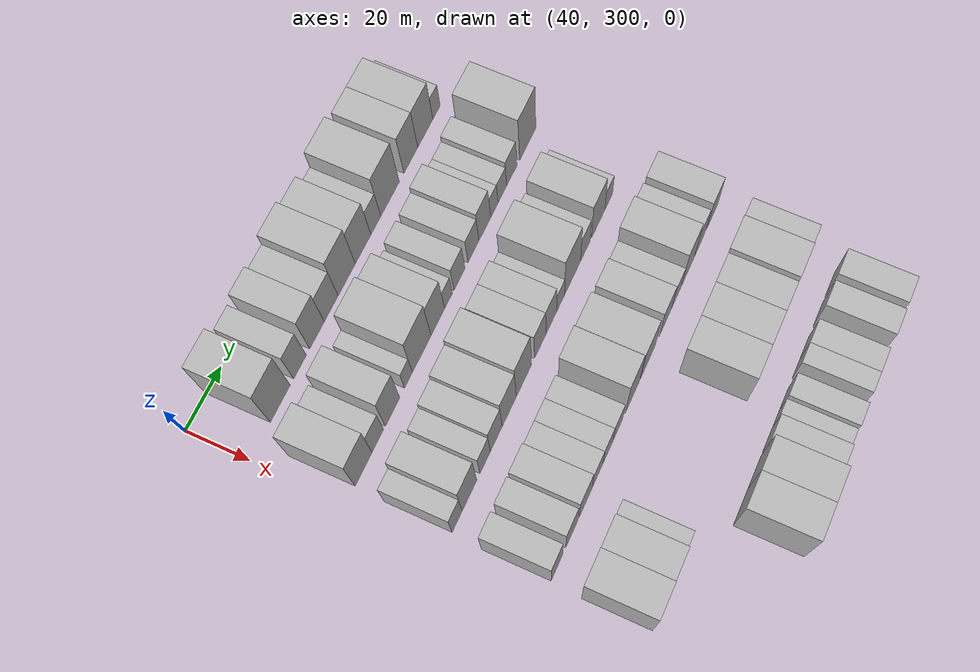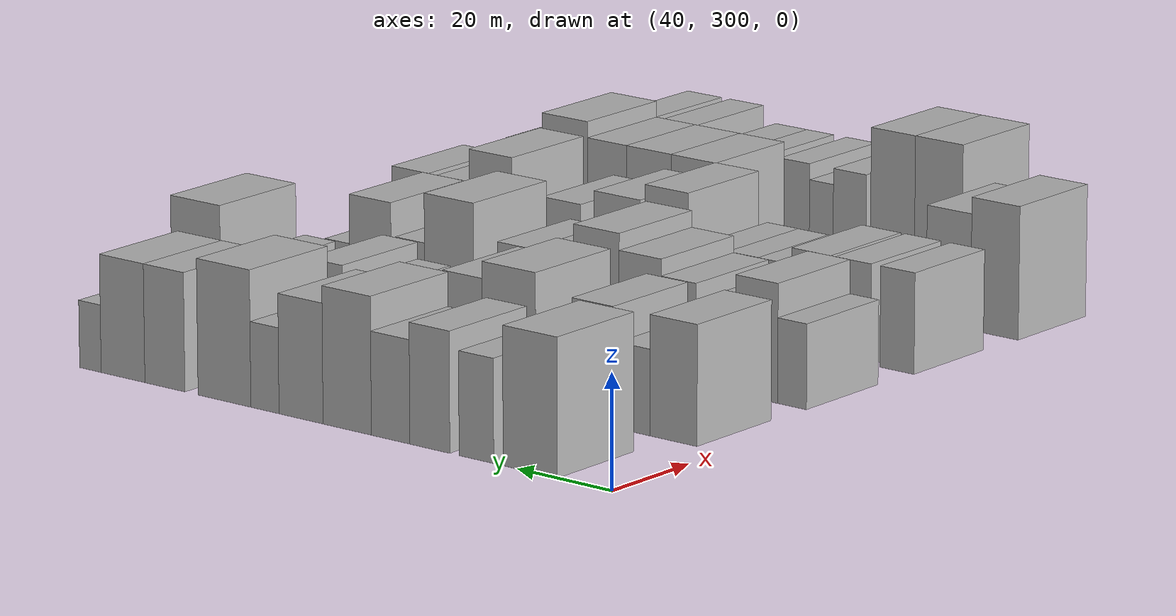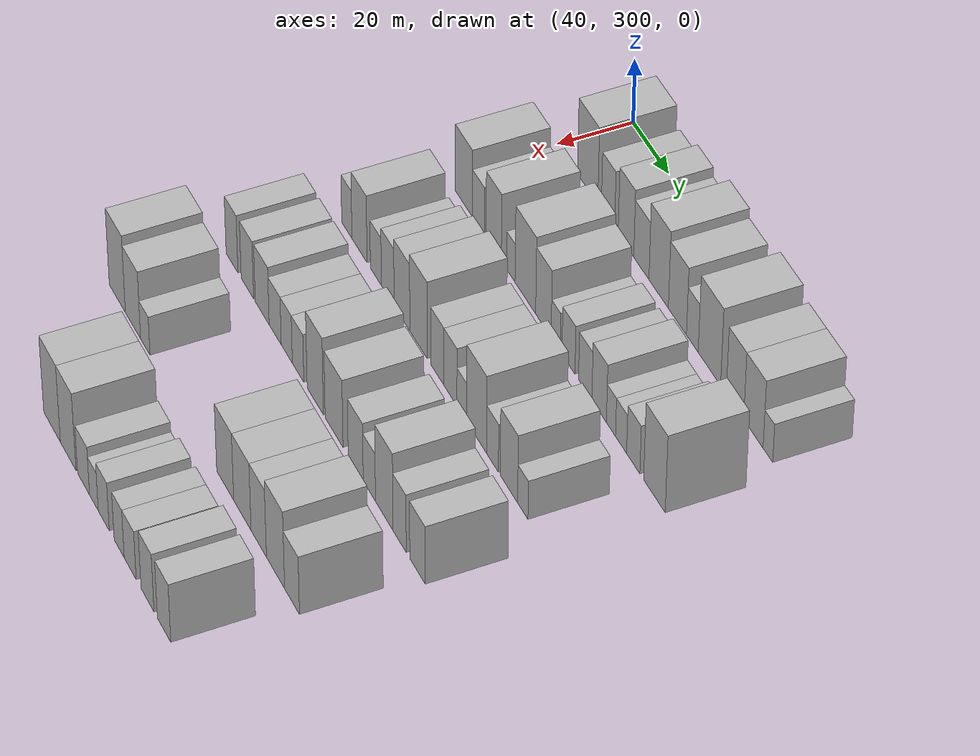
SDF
<sdf version="1.6">
 <world name="default">
  <model name="building_95">
   <static>1</static>
   <pose>50.0000 317.3767 0 0.000000 0.000000 0.000000</pose>
   <link name="link">
    <pose>0 0 12.00 0 0 0</pose>
    <collision name="collision"><geometry><box><size>20.0000 11.5306 24.0000</size></box></geometry></collision>
    <visual name="visual">
     <cast_shadows>0</cast_shadows>
     <geometry><box><size>20.0000 11.5306 24.0000</size></box></geometry>
     <material>
      <script>
       <uri>model://HANNAS_wall/materials/scripts</uri>
       <uri>model://HANNAS_wall/materials/textures</uri>
       <name>vrc/HANNAS_wall</name>
      </script>
     </material>
    </visual>
   </link>
  </model>
  <model name="building_96">
   <static>1</static>
   <pose>50.0000 328.8717 0 0.000000 0.000000 0.000000</pose>
   <link name="link">
    <pose>0 0 9.00 0 0 0</pose>
    <collision name="collision"><geometry><box><size>20.0000 7.4594 18.0000</size></box></geometry></collision>
    <visual name="visual">
     <cast_shadows>0</cast_shadows>
     <geometry><box><size>20.0000 7.4594 18.0000</size></box></geometry>
     <material>
      <script>
       <uri>model://HANNAS_wall/materials/scripts</uri>
       <uri>model://HANNAS_wall/materials/textures</uri>
       <name>vrc/HANNAS_wall</name>
      </script>
     </material>
    </visual>
   </link>
  </model>
  <model name="building_97">
   <static>1</static>
   <pose>50.0000 338.9504 0 0.000000 0.000000 0.000000</pose>
   <link name="link">
    <pose>0 0 10.50 0 0 0</pose>
    <collision name="collision"><geometry><box><size>20.0000 8.6980 21.0000</size></box></geometry></collision>
    <visual name="visual">
     <cast_shadows>0</cast_shadows>
     <geometry><box><size>20.0000 8.6980 21.0000</size></box></geometry>
     <material>
      <script>
       <uri>model://HANNAS_wall/materials/scripts</uri>
       <uri>model://HANNAS_wall/materials/textures</uri>
       <name>vrc/HANNAS_wall</name>
      </script>
     </material>
    </visual>
   </link>
  </model>
  <model name="building_98">
   <static>1</static>
   <pose>50.0000 347.5077 0 0.000000 0.000000 0.000000</pose>
   <link name="link">
    <pose>0 0 9.00 0 0 0</pose>
    <collision name="collision"><geometry><box><size>20.0000 8.4166 18.0000</size></box></geometry></collision>
    <visual name="visual">
     <cast_shadows>0</cast_shadows>
     <geometry><box><size>20.0000 8.4166 18.0000</size></box></geometry>
     <material>
      <script>
       <uri>model://HANNAS_wall/materials/scripts</uri>
       <uri>model://HANNAS_wall/materials/textures</uri>
       <name>vrc/HANNAS_wall</name>
      </script>
     </material>
    </visual>
   </link>
  </model>
  <model name="building_99">
   <static>1</static>
   <pose>50.0000 357.0452 0 0.000000 0.000000 0.000000</pose>
   <link name="link">
    <pose>0 0 12.00 0 0 0</pose>
    <collision name="collision"><geometry><box><size>20.0000 10.6584 24.0000</size></box></geometry></collision>
    <visual name="visual">
     <cast_shadows>0</cast_shadows>
     <geometry><box><size>20.0000 10.6584 24.0000</size></box></geometry>
     <material>
      <script>
       <uri>model://HANNAS_wall/materials/scripts</uri>
       <uri>model://HANNAS_wall/materials/textures</uri>
       <name>vrc/HANNAS_wall</name>
      </script>
     </material>
    </visual>
   </link>
  </model>
  <model name="building_100">
   <static>1</static>
   <pose>50.0000 367.2842 0 0.000000 0.000000 0.000000</pose>
   <link name="link">
    <pose>0 0 10.50 0 0 0</pose>
    <collision name="collision"><geometry><box><size>20.0000 9.8195 21.0000</size></box></geometry></collision>
    <visual name="visual">
     <cast_shadows>0</cast_shadows>
     <geometry><box><size>20.0000 9.8195 21.0000</size></box></geometry>
     <material>
      <script>
       <uri>model://HANNAS_wall/materials/scripts</uri>
       <uri>model://HANNAS_wall/materials/textures</uri>
       <name>vrc/HANNAS_wall</name>
      </script>
     </material>
    </visual>
   </link>
  </model>
  <model name="building_101">
   <static>1</static>
   <pose>50.0000 375.3558 0 0.000000 0.000000 0.000000</pose>
   <link name="link">
    <pose>0 0 7.50 0 0 0</pose>
    <collision name="collision"><geometry><box><size>20.0000 6.3237 15.0000</size></box></geometry></collision>
    <visual name="visual">
     <cast_shadows>0</cast_shadows>
     <geometry><box><size>20.0000 6.3237 15.0000</size></box></geometry>
     <material>
      <script>
       <uri>model://HANNAS_wall/materials/scripts</uri>
       <uri>model://HANNAS_wall/materials/textures</uri>
       <name>vrc/HANNAS_wall</name>
      </script>
     </material>
    </visual>
   </link>
  </model>
  <model name="building_102">
   <static>1</static>
   <pose>50.0000 384.4923 0 0.000000 0.000000 0.000000</pose>
   <link name="link">
    <pose>0 0 12.00 0 0 0</pose>
    <collision name="collision"><geometry><box><size>20.0000 11.9492 24.0000</size></box></geometry></collision>
    <visual name="visual">
     <cast_shadows>0</cast_shadows>
     <geometry><box><size>20.0000 11.9492 24.0000</size></box></geometry>
     <material>
      <script>
       <uri>model://HANNAS_wall/materials/scripts</uri>
       <uri>model://HANNAS_wall/materials/textures</uri>
       <name>vrc/HANNAS_wall</name>
      </script>
     </material>
    </visual>
   </link>
  </model>
  <model name="building_103">
   <static>1</static>
   <pose>50.0000 398.0509 0 0.000000 0.000000 0.000000</pose>
   <link name="link">
    <pose>0 0 10.50 0 0 0</pose>
    <collision name="collision"><geometry><box><size>20.0000 9.1679 21.0000</size></box></geometry></collision>
    <visual name="visual">
     <cast_shadows>0</cast_shadows>
     <geometry><box><size>20.0000 9.1679 21.0000</size></box></geometry>
     <material>
      <script>
       <uri>model://HANNAS_wall/materials/scripts</uri>
       <uri>model://HANNAS_wall/materials/textures</uri>
       <name>vrc/HANNAS_wall</name>
      </script>
     </material>
    </visual>
   </link>
  </model>
  <model name="building_104">
   <static>1</static>
   <pose>50.0000 407.6872 0 0.000000 0.000000 0.000000</pose>
   <link name="link">
    <pose>0 0 10.50 0 0 0</pose>
    <collision name="collision"><geometry><box><size>20.0000 10.1046 21.0000</size></box></geometry></collision>
    <visual name="visual">
     <cast_shadows>0</cast_shadows>
     <geometry><box><size>20.0000 10.1046 21.0000</size></box></geometry>
     <material>
      <script>
       <uri>model://HANNAS_wall/materials/scripts</uri>
       <uri>model://HANNAS_wall/materials/textures</uri>
       <name>vrc/HANNAS_wall</name>
      </script>
     </material>
    </visual>
   </link>
  </model>
  <model name="building_105">
   <static>1</static>
   <pose>50.0000 415.2380 0 0.000000 0.000000 0.000000</pose>
   <link name="link">
    <pose>0 0 6.00 0 0 0</pose>
    <collision name="collision"><geometry><box><size>20.0000 4.9970 12.0000</size></box></geometry></collision>
    <visual name="visual">
     <cast_shadows>0</cast_shadows>
     <geometry><box><size>20.0000 4.9970 12.0000</size></box></geometry>
     <material>
      <script>
       <uri>model://HANNAS_wall/materials/scripts</uri>
       <uri>model://HANNAS_wall/materials/textures</uri>
       <name>vrc/HANNAS_wall</name>
      </script>
     </material>
    </visual>
   </link>
  </model>
  <model name="building_205">
   <static>1</static>
   <pose>79.0000 310.3971 0 0.000000 0.000000 0.000000</pose>
   <link name="link">
    <pose>0 0 10.50 0 0 0</pose>
    <collision name="collision"><geometry><box><size>20.0000 10.0249 21.0000</size></box></geometry></collision>
    <visual name="visual">
     <cast_shadows>0</cast_shadows>
     <geometry><box><size>20.0000 10.0249 21.0000</size></box></geometry>
     <material>
      <script>
       <uri>model://HANNAS_wall/materials/scripts</uri>
       <uri>model://HANNAS_wall/materials/textures</uri>
       <name>vrc/HANNAS_wall</name>
      </script>
     </material>
    </visual>
   </link>
  </model>
  <model name="building_206">
   <static>1</static>
   <pose>79.0000 318.8785 0 0.000000 0.000000 0.000000</pose>
   <link name="link">
    <pose>0 0 7.50 0 0 0</pose>
    <collision name="collision"><geometry><box><size>20.0000 6.9378 15.0000</size></box></geometry></collision>
    <visual name="visual">
     <cast_shadows>0</cast_shadows>
     <geometry><box><size>20.0000 6.9378 15.0000</size></box></geometry>
     <material>
      <script>
       <uri>model://HANNAS_wall/materials/scripts</uri>
       <uri>model://HANNAS_wall/materials/textures</uri>
       <name>vrc/HANNAS_wall</name>
      </script>
     </material>
    </visual>
   </link>
  </model>
  <model name="building_207">
   <static>1</static>
   <pose>79.0000 327.7746 0 0.000000 0.000000 0.000000</pose>
   <link name="link">
    <pose>0 0 10.50 0 0 0</pose>
    <collision name="collision"><geometry><box><size>20.0000 8.8544 21.0000</size></box></geometry></collision>
    <visual name="visual">
     <cast_shadows>0</cast_shadows>
     <geometry><box><size>20.0000 8.8544 21.0000</size></box></geometry>
     <material>
      <script>
       <uri>model://HANNAS_wall/materials/scripts</uri>
       <uri>model://HANNAS_wall/materials/textures</uri>
       <name>vrc/HANNAS_wall</name>
      </script>
     </material>
    </visual>
   </link>
  </model>
  <model name="building_208">
   <static>1</static>
   <pose>79.0000 337.6482 0 0.000000 0.000000 0.000000</pose>
   <link name="link">
    <pose>0 0 6.00 0 0 0</pose>
    <collision name="collision"><geometry><box><size>20.0000 4.8928 12.0000</size></box></geometry></collision>
    <visual name="visual">
     <cast_shadows>0</cast_shadows>
     <geometry><box><size>20.0000 4.8928 12.0000</size></box></geometry>
     <material>
      <script>
       <uri>model://HANNAS_wall/materials/scripts</uri>
       <uri>model://HANNAS_wall/materials/textures</uri>
       <name>vrc/HANNAS_wall</name>
      </script>
     </material>
    </visual>
   </link>
  </model>
  <model name="building_209">
   <static>1</static>
   <pose>79.0000 345.9534 0 0.000000 0.000000 0.000000</pose>
   <link name="link">
    <pose>0 0 12.00 0 0 0</pose>
    <collision name="collision"><geometry><box><size>20.0000 11.7176 24.0000</size></box></geometry></collision>
    <visual name="visual">
     <cast_shadows>0</cast_shadows>
     <geometry><box><size>20.0000 11.7176 24.0000</size></box></geometry>
     <material>
      <script>
       <uri>model://HANNAS_wall/materials/scripts</uri>
       <uri>model://HANNAS_wall/materials/textures</uri>
       <name>vrc/HANNAS_wall</name>
      </script>
     </material>
    </visual>
   </link>
  </model>
  <model name="building_210">
   <static>1</static>
   <pose>79.0000 356.1618 0 0.000000 0.000000 0.000000</pose>
   <link name="link">
    <pose>0 0 10.50 0 0 0</pose>
    <collision name="collision"><geometry><box><size>20.0000 8.6993 21.0000</size></box></geometry></collision>
    <visual name="visual">
     <cast_shadows>0</cast_shadows>
     <geometry><box><size>20.0000 8.6993 21.0000</size></box></geometry>
     <material>
      <script>
       <uri>model://HANNAS_wall/materials/scripts</uri>
       <uri>model://HANNAS_wall/materials/textures</uri>
       <name>vrc/HANNAS_wall</name>
      </script>
     </material>
    </visual>
   </link>
  </model>
  <model name="building_211">
   <static>1</static>
   <pose>79.0000 363.0299 0 0.000000 0.000000 0.000000</pose>
   <link name="link">
    <pose>0 0 6.00 0 0 0</pose>
    <collision name="collision"><geometry><box><size>20.0000 5.0368 12.0000</size></box></geometry></collision>
    <visual name="visual">
     <cast_shadows>0</cast_shadows>
     <geometry><box><size>20.0000 5.0368 12.0000</size></box></geometry>
     <material>
      <script>
       <uri>model://HANNAS_wall/materials/scripts</uri>
       <uri>model://HANNAS_wall/materials/textures</uri>
       <name>vrc/HANNAS_wall</name>
      </script>
     </material>
    </visual>
   </link>
  </model>
  <model name="building_212">
   <static>1</static>
   <pose>79.0000 370.1549 0 0.000000 0.000000 0.000000</pose>
   <link name="link">
    <pose>0 0 7.50 0 0 0</pose>
    <collision name="collision"><geometry><box><size>20.0000 7.2132 15.0000</size></box></geometry></collision>
    <visual name="visual">
     <cast_shadows>0</cast_shadows>
     <geometry><box><size>20.0000 7.2132 15.0000</size></box></geometry>
     <material>
      <script>
       <uri>model://HANNAS_wall/materials/scripts</uri>
       <uri>model://HANNAS_wall/materials/textures</uri>
       <name>vrc/HANNAS_wall</name>
      </script>
     </material>
    </visual>
   </link>
  </model>
  <model name="building_213">
   <static>1</static>
   <pose>79.0000 379.4140 0 0.000000 0.000000 0.000000</pose>
   <link name="link">
    <pose>0 0 7.50 0 0 0</pose>
    <collision name="collision"><geometry><box><size>20.0000 7.3052 15.0000</size></box></geometry></collision>
    <visual name="visual">
     <cast_shadows>0</cast_shadows>
     <geometry><box><size>20.0000 7.3052 15.0000</size></box></geometry>
     <material>
      <script>
       <uri>model://HANNAS_wall/materials/scripts</uri>
       <uri>model://HANNAS_wall/materials/textures</uri>
       <name>vrc/HANNAS_wall</name>
      </script>
     </material>
    </visual>
   </link>
  </model>
  <model name="building_214">
   <static>1</static>
   <pose>79.0000 387.0411 0 0.000000 0.000000 0.000000</pose>
   <link name="link">
    <pose>0 0 9.00 0 0 0</pose>
    <collision name="collision"><geometry><box><size>20.0000 7.9490 18.0000</size></box></geometry></collision>
    <visual name="visual">
     <cast_shadows>0</cast_shadows>
     <geometry><box><size>20.0000 7.9490 18.0000</size></box></geometry>
     <material>
      <script>
       <uri>model://HANNAS_wall/materials/scripts</uri>
       <uri>model://HANNAS_wall/materials/textures</uri>
       <name>vrc/HANNAS_wall</name>
      </script>
     </material>
    </visual>
   </link>
  </model>
  <model name="building_215">
   <static>1</static>
   <pose>79.0000 393.4837 0 0.000000 0.000000 0.000000</pose>
   <link name="link">
    <pose>0 0 6.00 0 0 0</pose>
    <collision name="collision"><geometry><box><size>20.0000 4.9362 12.0000</size></box></geometry></collision>
    <visual name="visual">
     <cast_shadows>0</cast_shadows>
     <geometry><box><size>20.0000 4.9362 12.0000</size></box></geometry>
     <material>
      <script>
       <uri>model://HANNAS_wall/materials/scripts</uri>
       <uri>model://HANNAS_wall/materials/textures</uri>
       <name>vrc/HANNAS_wall</name>
      </script>
     </material>
    </visual>
   </link>
  </model>
  <model name="building_216">
   <static>1</static>
   <pose>79.0000 398.9422 0 0.000000 0.000000 0.000000</pose>
   <link name="link">
    <pose>0 0 6.00 0 0 0</pose>
    <collision name="collision"><geometry><box><size>20.0000 5.9808 12.0000</size></box></geometry></collision>
    <visual name="visual">
     <cast_shadows>0</cast_shadows>
     <geometry><box><size>20.0000 5.9808 12.0000</size></box></geometry>
     <material>
      <script>
       <uri>model://HANNAS_wall/materials/scripts</uri>
       <uri>model://HANNAS_wall/materials/textures</uri>
       <name>vrc/HANNAS_wall</name>
      </script>
     </material>
    </visual>
   </link>
  </model>
  <model name="building_217">
   <static>1</static>
   <pose>79.0000 405.4830 0 0.000000 0.000000 0.000000</pose>
   <link name="link">
    <pose>0 0 7.50 0 0 0</pose>
    <collision name="collision"><geometry><box><size>20.0000 7.1008 15.0000</size></box></geometry></collision>
    <visual name="visual">
     <cast_shadows>0</cast_shadows>
     <geometry><box><size>20.0000 7.1008 15.0000</size></box></geometry>
     <material>
      <script>
       <uri>model://HANNAS_wall/materials/scripts</uri>
       <uri>model://HANNAS_wall/materials/textures</uri>
       <name>vrc/HANNAS_wall</name>
      </script>
     </material>
    </visual>
   </link>
  </model>
  <model name="building_218">
   <static>1</static>
   <pose>79.0000 416.7580 0 0.000000 0.000000 0.000000</pose>
   <link name="link">
    <pose>0 0 12.00 0 0 0</pose>
    <collision name="collision"><geometry><box><size>20.0000 11.4493 24.0000</size></box></geometry></collision>
    <visual name="visual">
     <cast_shadows>0</cast_shadows>
     <geometry><box><size>20.0000 11.4493 24.0000</size></box></geometry>
     <material>
      <script>
       <uri>model://HANNAS_wall/materials/scripts</uri>
       <uri>model://HANNAS_wall/materials/textures</uri>
       <name>vrc/HANNAS_wall</name>
      </script>
     </material>
    </visual>
   </link>
  </model>
  <model name="building_321">
   <static>1</static>
   <pose>108.0000 307.9055 0 0.000000 0.000000 0.000000</pose>
   <link name="link">
    <pose>0 0 7.50 0 0 0</pose>
    <collision name="collision"><geometry><box><size>20.0000 6.1739 15.0000</size></box></geometry></collision>
    <visual name="visual">
     <cast_shadows>0</cast_shadows>
     <geometry><box><size>20.0000 6.1739 15.0000</size></box></geometry>
     <material>
      <script>
       <uri>model://HANNAS_wall/materials/scripts</uri>
       <uri>model://HANNAS_wall/materials/textures</uri>
       <name>vrc/HANNAS_wall</name>
      </script>
     </material>
    </visual>
   </link>
  </model>
  <model name="building_322">
   <static>1</static>
   <pose>108.0000 315.5460 0 0.000000 0.000000 0.000000</pose>
   <link name="link">
    <pose>0 0 10.50 0 0 0</pose>
    <collision name="collision"><geometry><box><size>20.0000 9.1071 21.0000</size></box></geometry></collision>
    <visual name="visual">
     <cast_shadows>0</cast_shadows>
     <geometry><box><size>20.0000 9.1071 21.0000</size></box></geometry>
     <material>
      <script>
       <uri>model://HANNAS_wall/materials/scripts</uri>
       <uri>model://HANNAS_wall/materials/textures</uri>
       <name>vrc/HANNAS_wall</name>
      </script>
     </material>
    </visual>
   </link>
  </model>
  <model name="building_323">
   <static>1</static>
   <pose>108.0000 325.3731 0 0.000000 0.000000 0.000000</pose>
   <link name="link">
    <pose>0 0 7.50 0 0 0</pose>
    <collision name="collision"><geometry><box><size>20.0000 6.5469 15.0000</size></box></geometry></collision>
    <visual name="visual">
     <cast_shadows>0</cast_shadows>
     <geometry><box><size>20.0000 6.5469 15.0000</size></box></geometry>
     <material>
      <script>
       <uri>model://HANNAS_wall/materials/scripts</uri>
       <uri>model://HANNAS_wall/materials/textures</uri>
       <name>vrc/HANNAS_wall</name>
      </script>
     </material>
    </visual>
   </link>
  </model>
  <model name="building_324">
   <static>1</static>
   <pose>108.0000 332.4349 0 0.000000 0.000000 0.000000</pose>
   <link name="link">
    <pose>0 0 9.00 0 0 0</pose>
    <collision name="collision"><geometry><box><size>20.0000 7.5768 18.0000</size></box></geometry></collision>
    <visual name="visual">
     <cast_shadows>0</cast_shadows>
     <geometry><box><size>20.0000 7.5768 18.0000</size></box></geometry>
     <material>
      <script>
       <uri>model://HANNAS_wall/materials/scripts</uri>
       <uri>model://HANNAS_wall/materials/textures</uri>
       <name>vrc/HANNAS_wall</name>
      </script>
     </material>
    </visual>
   </link>
  </model>
  <model name="building_325">
   <static>1</static>
   <pose>108.0000 340.8325 0 0.000000 0.000000 0.000000</pose>
   <link name="link">
    <pose>0 0 10.50 0 0 0</pose>
    <collision name="collision"><geometry><box><size>20.0000 9.2183 21.0000</size></box></geometry></collision>
    <visual name="visual">
     <cast_shadows>0</cast_shadows>
     <geometry><box><size>20.0000 9.2183 21.0000</size></box></geometry>
     <material>
      <script>
       <uri>model://HANNAS_wall/materials/scripts</uri>
       <uri>model://HANNAS_wall/materials/textures</uri>
       <name>vrc/HANNAS_wall</name>
      </script>
     </material>
    </visual>
   </link>
  </model>
  <model name="building_326">
   <static>1</static>
   <pose>108.0000 350.4680 0 0.000000 0.000000 0.000000</pose>
   <link name="link">
    <pose>0 0 12.00 0 0 0</pose>
    <collision name="collision"><geometry><box><size>20.0000 10.0527 24.0000</size></box></geometry></collision>
    <visual name="visual">
     <cast_shadows>0</cast_shadows>
     <geometry><box><size>20.0000 10.0527 24.0000</size></box></geometry>
     <material>
      <script>
       <uri>model://HANNAS_wall/materials/scripts</uri>
       <uri>model://HANNAS_wall/materials/textures</uri>
       <name>vrc/HANNAS_wall</name>
      </script>
     </material>
    </visual>
   </link>
  </model>
  <model name="building_327">
   <static>1</static>
   <pose>108.0000 361.3223 0 0.000000 0.000000 0.000000</pose>
   <link name="link">
    <pose>0 0 9.00 0 0 0</pose>
    <collision name="collision"><geometry><box><size>20.0000 7.6559 18.0000</size></box></geometry></collision>
    <visual name="visual">
     <cast_shadows>0</cast_shadows>
     <geometry><box><size>20.0000 7.6559 18.0000</size></box></geometry>
     <material>
      <script>
       <uri>model://HANNAS_wall/materials/scripts</uri>
       <uri>model://HANNAS_wall/materials/textures</uri>
       <name>vrc/HANNAS_wall</name>
      </script>
     </material>
    </visual>
   </link>
  </model>
  <model name="building_328">
   <static>1</static>
   <pose>108.0000 368.8560 0 0.000000 0.000000 0.000000</pose>
   <link name="link">
    <pose>0 0 9.00 0 0 0</pose>
    <collision name="collision"><geometry><box><size>20.0000 7.4115 18.0000</size></box></geometry></collision>
    <visual name="visual">
     <cast_shadows>0</cast_shadows>
     <geometry><box><size>20.0000 7.4115 18.0000</size></box></geometry>
     <material>
      <script>
       <uri>model://HANNAS_wall/materials/scripts</uri>
       <uri>model://HANNAS_wall/materials/textures</uri>
       <name>vrc/HANNAS_wall</name>
      </script>
     </material>
    </visual>
   </link>
  </model>
  <model name="building_329">
   <static>1</static>
   <pose>108.0000 375.2865 0 0.000000 0.000000 0.000000</pose>
   <link name="link">
    <pose>0 0 6.00 0 0 0</pose>
    <collision name="collision"><geometry><box><size>20.0000 5.4496 12.0000</size></box></geometry></collision>
    <visual name="visual">
     <cast_shadows>0</cast_shadows>
     <geometry><box><size>20.0000 5.4496 12.0000</size></box></geometry>
     <material>
      <script>
       <uri>model://HANNAS_wall/materials/scripts</uri>
       <uri>model://HANNAS_wall/materials/textures</uri>
       <name>vrc/HANNAS_wall</name>
      </script>
     </material>
    </visual>
   </link>
  </model>
  <model name="building_330">
   <static>1</static>
   <pose>108.0000 383.5953 0 0.000000 0.000000 0.000000</pose>
   <link name="link">
    <pose>0 0 12.00 0 0 0</pose>
    <collision name="collision"><geometry><box><size>20.0000 11.1680 24.0000</size></box></geometry></collision>
    <visual name="visual">
     <cast_shadows>0</cast_shadows>
     <geometry><box><size>20.0000 11.1680 24.0000</size></box></geometry>
     <material>
      <script>
       <uri>model://HANNAS_wall/materials/scripts</uri>
       <uri>model://HANNAS_wall/materials/textures</uri>
       <name>vrc/HANNAS_wall</name>
      </script>
     </material>
    </visual>
   </link>
  </model>
  <model name="building_331">
   <static>1</static>
   <pose>108.0000 392.5184 0 0.000000 0.000000 0.000000</pose>
   <link name="link">
    <pose>0 0 7.50 0 0 0</pose>
    <collision name="collision"><geometry><box><size>20.0000 6.6781 15.0000</size></box></geometry></collision>
    <visual name="visual">
     <cast_shadows>0</cast_shadows>
     <geometry><box><size>20.0000 6.6781 15.0000</size></box></geometry>
     <material>
      <script>
       <uri>model://HANNAS_wall/materials/scripts</uri>
       <uri>model://HANNAS_wall/materials/textures</uri>
       <name>vrc/HANNAS_wall</name>
      </script>
     </material>
    </visual>
   </link>
  </model>
  <model name="building_332">
   <static>1</static>
   <pose>108.0000 401.6512 0 0.000000 0.000000 0.000000</pose>
   <link name="link">
    <pose>0 0 10.50 0 0 0</pose>
    <collision name="collision"><geometry><box><size>20.0000 9.5876 21.0000</size></box></geometry></collision>
    <visual name="visual">
     <cast_shadows>0</cast_shadows>
     <geometry><box><size>20.0000 9.5876 21.0000</size></box></geometry>
     <material>
      <script>
       <uri>model://HANNAS_wall/materials/scripts</uri>
       <uri>model://HANNAS_wall/materials/textures</uri>
       <name>vrc/HANNAS_wall</name>
      </script>
     </material>
    </visual>
   </link>
  </model>
  <model name="building_333">
   <static>1</static>
   <pose>108.0000 409.2867 0 0.000000 0.000000 0.000000</pose>
   <link name="link">
    <pose>0 0 6.00 0 0 0</pose>
    <collision name="collision"><geometry><box><size>20.0000 5.6834 12.0000</size></box></geometry></collision>
    <visual name="visual">
     <cast_shadows>0</cast_shadows>
     <geometry><box><size>20.0000 5.6834 12.0000</size></box></geometry>
     <material>
      <script>
       <uri>model://HANNAS_wall/materials/scripts</uri>
       <uri>model://HANNAS_wall/materials/textures</uri>
       <name>vrc/HANNAS_wall</name>
      </script>
     </material>
    </visual>
   </link>
  </model>
  <model name="building_428">
   <static>1</static>
   <pose>137.0000 307.5940 0 0.000000 0.000000 0.000000</pose>
   <link name="link">
    <pose>0 0 9.00 0 0 0</pose>
    <collision name="collision"><geometry><box><size>20.0000 7.3550 18.0000</size></box></geometry></collision>
    <visual name="visual">
     <cast_shadows>0</cast_shadows>
     <geometry><box><size>20.0000 7.3550 18.0000</size></box></geometry>
     <material>
      <script>
       <uri>model://HANNAS_wall/materials/scripts</uri>
       <uri>model://HANNAS_wall/materials/textures</uri>
       <name>vrc/HANNAS_wall</name>
      </script>
     </material>
    </visual>
   </link>
  </model>
  <model name="building_429">
   <static>1</static>
   <pose>137.0000 317.1314 0 0.000000 0.000000 0.000000</pose>
   <link name="link">
    <pose>0 0 9.00 0 0 0</pose>
    <collision name="collision"><geometry><box><size>20.0000 7.7197 18.0000</size></box></geometry></collision>
    <visual name="visual">
     <cast_shadows>0</cast_shadows>
     <geometry><box><size>20.0000 7.7197 18.0000</size></box></geometry>
     <material>
      <script>
       <uri>model://HANNAS_wall/materials/scripts</uri>
       <uri>model://HANNAS_wall/materials/textures</uri>
       <name>vrc/HANNAS_wall</name>
      </script>
     </material>
    </visual>
   </link>
  </model>
  <model name="building_430">
   <static>1</static>
   <pose>137.0000 326.2420 0 0.000000 0.000000 0.000000</pose>
   <link name="link">
    <pose>0 0 9.00 0 0 0</pose>
    <collision name="collision"><geometry><box><size>20.0000 8.5014 18.0000</size></box></geometry></collision>
    <visual name="visual">
     <cast_shadows>0</cast_shadows>
     <geometry><box><size>20.0000 8.5014 18.0000</size></box></geometry>
     <material>
      <script>
       <uri>model://HANNAS_wall/materials/scripts</uri>
       <uri>model://HANNAS_wall/materials/textures</uri>
       <name>vrc/HANNAS_wall</name>
      </script>
     </material>
    </visual>
   </link>
  </model>
  <model name="building_431">
   <static>1</static>
   <pose>137.0000 334.1659 0 0.000000 0.000000 0.000000</pose>
   <link name="link">
    <pose>0 0 7.50 0 0 0</pose>
    <collision name="collision"><geometry><box><size>20.0000 7.3465 15.0000</size></box></geometry></collision>
    <visual name="visual">
     <cast_shadows>0</cast_shadows>
     <geometry><box><size>20.0000 7.3465 15.0000</size></box></geometry>
     <material>
      <script>
       <uri>model://HANNAS_wall/materials/scripts</uri>
       <uri>model://HANNAS_wall/materials/textures</uri>
       <name>vrc/HANNAS_wall</name>
      </script>
     </material>
    </visual>
   </link>
  </model>
  <model name="building_432">
   <static>1</static>
   <pose>137.0000 341.1697 0 0.000000 0.000000 0.000000</pose>
   <link name="link">
    <pose>0 0 7.50 0 0 0</pose>
    <collision name="collision"><geometry><box><size>20.0000 6.6610 15.0000</size></box></geometry></collision>
    <visual name="visual">
     <cast_shadows>0</cast_shadows>
     <geometry><box><size>20.0000 6.6610 15.0000</size></box></geometry>
     <material>
      <script>
       <uri>model://HANNAS_wall/materials/scripts</uri>
       <uri>model://HANNAS_wall/materials/textures</uri>
       <name>vrc/HANNAS_wall</name>
      </script>
     </material>
    </visual>
   </link>
  </model>
  <model name="building_433">
   <static>1</static>
   <pose>137.0000 347.9510 0 0.000000 0.000000 0.000000</pose>
   <link name="link">
    <pose>0 0 7.50 0 0 0</pose>
    <collision name="collision"><geometry><box><size>20.0000 6.9015 15.0000</size></box></geometry></collision>
    <visual name="visual">
     <cast_shadows>0</cast_shadows>
     <geometry><box><size>20.0000 6.9015 15.0000</size></box></geometry>
     <material>
      <script>
       <uri>model://HANNAS_wall/materials/scripts</uri>
       <uri>model://HANNAS_wall/materials/textures</uri>
       <name>vrc/HANNAS_wall</name>
      </script>
     </material>
    </visual>
   </link>
  </model>
  <model name="building_434">
   <static>1</static>
   <pose>137.0000 358.2383 0 0.000000 0.000000 0.000000</pose>
   <link name="link">
    <pose>0 0 12.00 0 0 0</pose>
    <collision name="collision"><geometry><box><size>20.0000 9.6731 24.0000</size></box></geometry></collision>
    <visual name="visual">
     <cast_shadows>0</cast_shadows>
     <geometry><box><size>20.0000 9.6731 24.0000</size></box></geometry>
     <material>
      <script>
       <uri>model://HANNAS_wall/materials/scripts</uri>
       <uri>model://HANNAS_wall/materials/textures</uri>
       <name>vrc/HANNAS_wall</name>
      </script>
     </material>
    </visual>
   </link>
  </model>
  <model name="building_435">
   <static>1</static>
   <pose>137.0000 369.3159 0 0.000000 0.000000 0.000000</pose>
   <link name="link">
    <pose>0 0 10.50 0 0 0</pose>
    <collision name="collision"><geometry><box><size>20.0000 10.4820 21.0000</size></box></geometry></collision>
    <visual name="visual">
     <cast_shadows>0</cast_shadows>
     <geometry><box><size>20.0000 10.4820 21.0000</size></box></geometry>
     <material>
      <script>
       <uri>model://HANNAS_wall/materials/scripts</uri>
       <uri>model://HANNAS_wall/materials/textures</uri>
       <name>vrc/HANNAS_wall</name>
      </script>
     </material>
    </visual>
   </link>
  </model>
  <model name="building_436">
   <static>1</static>
   <pose>137.0000 381.9107 0 0.000000 0.000000 0.000000</pose>
   <link name="link">
    <pose>0 0 9.00 0 0 0</pose>
    <collision name="collision"><geometry><box><size>20.0000 8.7077 18.0000</size></box></geometry></collision>
    <visual name="visual">
     <cast_shadows>0</cast_shadows>
     <geometry><box><size>20.0000 8.7077 18.0000</size></box></geometry>
     <material>
      <script>
       <uri>model://HANNAS_wall/materials/scripts</uri>
       <uri>model://HANNAS_wall/materials/textures</uri>
       <name>vrc/HANNAS_wall</name>
      </script>
     </material>
    </visual>
   </link>
  </model>
  <model name="building_437">
   <static>1</static>
   <pose>137.0000 389.7853 0 0.000000 0.000000 0.000000</pose>
   <link name="link">
    <pose>0 0 7.50 0 0 0</pose>
    <collision name="collision"><geometry><box><size>20.0000 7.0414 15.0000</size></box></geometry></collision>
    <visual name="visual">
     <cast_shadows>0</cast_shadows>
     <geometry><box><size>20.0000 7.0414 15.0000</size></box></geometry>
     <material>
      <script>
       <uri>model://HANNAS_wall/materials/scripts</uri>
       <uri>model://HANNAS_wall/materials/textures</uri>
       <name>vrc/HANNAS_wall</name>
      </script>
     </material>
    </visual>
   </link>
  </model>
  <model name="building_438">
   <static>1</static>
   <pose>137.0000 398.2998 0 0.000000 0.000000 0.000000</pose>
   <link name="link">
    <pose>0 0 12.00 0 0 0</pose>
    <collision name="collision"><geometry><box><size>20.0000 9.9876 24.0000</size></box></geometry></collision>
    <visual name="visual">
     <cast_shadows>0</cast_shadows>
     <geometry><box><size>20.0000 9.9876 24.0000</size></box></geometry>
     <material>
      <script>
       <uri>model://HANNAS_wall/materials/scripts</uri>
       <uri>model://HANNAS_wall/materials/textures</uri>
       <name>vrc/HANNAS_wall</name>
      </script>
     </material>
    </visual>
   </link>
  </model>
  <model name="building_439">
   <static>1</static>
   <pose>137.0000 407.0092 0 0.000000 0.000000 0.000000</pose>
   <link name="link">
    <pose>0 0 9.00 0 0 0</pose>
    <collision name="collision"><geometry><box><size>20.0000 7.4314 18.0000</size></box></geometry></collision>
    <visual name="visual">
     <cast_shadows>0</cast_shadows>
     <geometry><box><size>20.0000 7.4314 18.0000</size></box></geometry>
     <material>
      <script>
       <uri>model://HANNAS_wall/materials/scripts</uri>
       <uri>model://HANNAS_wall/materials/textures</uri>
       <name>vrc/HANNAS_wall</name>
      </script>
     </material>
    </visual>
   </link>
  </model>
  <model name="building_440">
   <static>1</static>
   <pose>137.0000 417.0597 0 0.000000 0.000000 0.000000</pose>
   <link name="link">
    <pose>0 0 9.00 0 0 0</pose>
    <collision name="collision"><geometry><box><size>20.0000 8.6694 18.0000</size></box></geometry></collision>
    <visual name="visual">
     <cast_shadows>0</cast_shadows>
     <geometry><box><size>20.0000 8.6694 18.0000</size></box></geometry>
     <material>
      <script>
       <uri>model://HANNAS_wall/materials/scripts</uri>
       <uri>model://HANNAS_wall/materials/textures</uri>
       <name>vrc/HANNAS_wall</name>
      </script>
     </material>
    </visual>
   </link>
  </model>
  <model name="building_544">
   <static>1</static>
   <pose>166.0000 308.1933 0 0.000000 0.000000 0.000000</pose>
   <link name="link">
    <pose>0 0 12.00 0 0 0</pose>
    <collision name="collision"><geometry><box><size>20.0000 10.3128 24.0000</size></box></geometry></collision>
    <visual name="visual">
     <cast_shadows>0</cast_shadows>
     <geometry><box><size>20.0000 10.3128 24.0000</size></box></geometry>
     <material>
      <script>
       <uri>model://HANNAS_wall/materials/scripts</uri>
       <uri>model://HANNAS_wall/materials/textures</uri>
       <name>vrc/HANNAS_wall</name>
      </script>
     </material>
    </visual>
   </link>
  </model>
  <model name="building_545">
   <static>1</static>
   <pose>166.0000 318.1963 0 0.000000 0.000000 0.000000</pose>
   <link name="link">
    <pose>0 0 10.50 0 0 0</pose>
    <collision name="collision"><geometry><box><size>20.0000 9.6932 21.0000</size></box></geometry></collision>
    <visual name="visual">
     <cast_shadows>0</cast_shadows>
     <geometry><box><size>20.0000 9.6932 21.0000</size></box></geometry>
     <material>
      <script>
       <uri>model://HANNAS_wall/materials/scripts</uri>
       <uri>model://HANNAS_wall/materials/textures</uri>
       <name>vrc/HANNAS_wall</name>
      </script>
     </material>
    </visual>
   </link>
  </model>
  <model name="building_546">
   <static>1</static>
   <pose>166.0000 326.0066 0 0.000000 0.000000 0.000000</pose>
   <link name="link">
    <pose>0 0 6.00 0 0 0</pose>
    <collision name="collision"><geometry><box><size>20.0000 5.9272 12.0000</size></box></geometry></collision>
    <visual name="visual">
     <cast_shadows>0</cast_shadows>
     <geometry><box><size>20.0000 5.9272 12.0000</size></box></geometry>
     <material>
      <script>
       <uri>model://HANNAS_wall/materials/scripts</uri>
       <uri>model://HANNAS_wall/materials/textures</uri>
       <name>vrc/HANNAS_wall</name>
      </script>
     </material>
    </visual>
   </link>
  </model>
  <model name="building_547">
   <static>1</static>
   <pose>166.0000 375.2459 0 0.000000 0.000000 0.000000</pose>
   <link name="link">
    <pose>0 0 10.50 0 0 0</pose>
    <collision name="collision"><geometry><box><size>20.0000 10.1838 21.0000</size></box></geometry></collision>
    <visual name="visual">
     <cast_shadows>0</cast_shadows>
     <geometry><box><size>20.0000 10.1838 21.0000</size></box></geometry>
     <material>
      <script>
       <uri>model://HANNAS_wall/materials/scripts</uri>
       <uri>model://HANNAS_wall/materials/textures</uri>
       <name>vrc/HANNAS_wall</name>
      </script>
     </material>
    </visual>
   </link>
  </model>
  <model name="building_548">
   <static>1</static>
   <pose>166.0000 385.4889 0 0.000000 0.000000 0.000000</pose>
   <link name="link">
    <pose>0 0 10.50 0 0 0</pose>
    <collision name="collision"><geometry><box><size>20.0000 10.3022 21.0000</size></box></geometry></collision>
    <visual name="visual">
     <cast_shadows>0</cast_shadows>
     <geometry><box><size>20.0000 10.3022 21.0000</size></box></geometry>
     <material>
      <script>
       <uri>model://HANNAS_wall/materials/scripts</uri>
       <uri>model://HANNAS_wall/materials/textures</uri>
       <name>vrc/HANNAS_wall</name>
      </script>
     </material>
    </visual>
   </link>
  </model>
  <model name="building_549">
   <static>1</static>
   <pose>166.0000 395.1629 0 0.000000 0.000000 0.000000</pose>
   <link name="link">
    <pose>0 0 10.50 0 0 0</pose>
    <collision name="collision"><geometry><box><size>20.0000 9.0458 21.0000</size></box></geometry></collision>
    <visual name="visual">
     <cast_shadows>0</cast_shadows>
     <geometry><box><size>20.0000 9.0458 21.0000</size></box></geometry>
     <material>
      <script>
       <uri>model://HANNAS_wall/materials/scripts</uri>
       <uri>model://HANNAS_wall/materials/textures</uri>
       <name>vrc/HANNAS_wall</name>
      </script>
     </material>
    </visual>
   </link>
  </model>
  <model name="building_550">
   <static>1</static>
   <pose>166.0000 404.9783 0 0.000000 0.000000 0.000000</pose>
   <link name="link">
    <pose>0 0 12.00 0 0 0</pose>
    <collision name="collision"><geometry><box><size>20.0000 10.5851 24.0000</size></box></geometry></collision>
    <visual name="visual">
     <cast_shadows>0</cast_shadows>
     <geometry><box><size>20.0000 10.5851 24.0000</size></box></geometry>
     <material>
      <script>
       <uri>model://HANNAS_wall/materials/scripts</uri>
       <uri>model://HANNAS_wall/materials/textures</uri>
       <name>vrc/HANNAS_wall</name>
      </script>
     </material>
    </visual>
   </link>
  </model>
  <model name="building_551">
   <static>1</static>
   <pose>166.0000 414.5500 0 0.000000 0.000000 0.000000</pose>
   <link name="link">
    <pose>0 0 9.00 0 0 0</pose>
    <collision name="collision"><geometry><box><size>20.0000 8.5582 18.0000</size></box></geometry></collision>
    <visual name="visual">
     <cast_shadows>0</cast_shadows>
     <geometry><box><size>20.0000 8.5582 18.0000</size></box></geometry>
     <material>
      <script>
       <uri>model://HANNAS_wall/materials/scripts</uri>
       <uri>model://HANNAS_wall/materials/textures</uri>
       <name>vrc/HANNAS_wall</name>
      </script>
     </material>
    </visual>
   </link>
  </model>
  <model name="building_653">
   <static>1</static>
   <pose>195.0000 342.0756 0 0.000000 0.000000 0.000000</pose>
   <link name="link">
    <pose>0 0 12.00 0 0 0</pose>
    <collision name="collision"><geometry><box><size>20.0000 10.6264 24.0000</size></box></geometry></collision>
    <visual name="visual">
     <cast_shadows>0</cast_shadows>
     <geometry><box><size>20.0000 10.6264 24.0000</size></box></geometry>
     <material>
      <script>
       <uri>model://HANNAS_wall/materials/scripts</uri>
       <uri>model://HANNAS_wall/materials/textures</uri>
       <name>vrc/HANNAS_wall</name>
      </script>
     </material>
    </visual>
   </link>
  </model>
  <model name="building_654">
   <static>1</static>
   <pose>195.0000 352.3637 0 0.000000 0.000000 0.000000</pose>
   <link name="link">
    <pose>0 0 12.00 0 0 0</pose>
    <collision name="collision"><geometry><box><size>20.0000 9.9497 24.0000</size></box></geometry></collision>
    <visual name="visual">
     <cast_shadows>0</cast_shadows>
     <geometry><box><size>20.0000 9.9497 24.0000</size></box></geometry>
     <material>
      <script>
       <uri>model://HANNAS_wall/materials/scripts</uri>
       <uri>model://HANNAS_wall/materials/textures</uri>
       <name>vrc/HANNAS_wall</name>
      </script>
     </material>
    </visual>
   </link>
  </model>
  <model name="building_655">
   <static>1</static>
   <pose>195.0000 362.0801 0 0.000000 0.000000 0.000000</pose>
   <link name="link">
    <pose>0 0 7.50 0 0 0</pose>
    <collision name="collision"><geometry><box><size>20.0000 7.4832 15.0000</size></box></geometry></collision>
    <visual name="visual">
     <cast_shadows>0</cast_shadows>
     <geometry><box><size>20.0000 7.4832 15.0000</size></box></geometry>
     <material>
      <script>
       <uri>model://HANNAS_wall/materials/scripts</uri>
       <uri>model://HANNAS_wall/materials/textures</uri>
       <name>vrc/HANNAS_wall</name>
      </script>
     </material>
    </visual>
   </link>
  </model>
  <model name="building_656">
   <static>1</static>
   <pose>195.0000 368.5445 0 0.000000 0.000000 0.000000</pose>
   <link name="link">
    <pose>0 0 6.00 0 0 0</pose>
    <collision name="collision"><geometry><box><size>20.0000 5.4457 12.0000</size></box></geometry></collision>
    <visual name="visual">
     <cast_shadows>0</cast_shadows>
     <geometry><box><size>20.0000 5.4457 12.0000</size></box></geometry>
     <material>
      <script>
       <uri>model://HANNAS_wall/materials/scripts</uri>
       <uri>model://HANNAS_wall/materials/textures</uri>
       <name>vrc/HANNAS_wall</name>
      </script>
     </material>
    </visual>
   </link>
  </model>
  <model name="building_657">
   <static>1</static>
   <pose>195.0000 374.6840 0 0.000000 0.000000 0.000000</pose>
   <link name="link">
    <pose>0 0 7.50 0 0 0</pose>
    <collision name="collision"><geometry><box><size>20.0000 6.8332 15.0000</size></box></geometry></collision>
    <visual name="visual">
     <cast_shadows>0</cast_shadows>
     <geometry><box><size>20.0000 6.8332 15.0000</size></box></geometry>
     <material>
      <script>
       <uri>model://HANNAS_wall/materials/scripts</uri>
       <uri>model://HANNAS_wall/materials/textures</uri>
       <name>vrc/HANNAS_wall</name>
      </script>
     </material>
    </visual>
   </link>
  </model>
  <model name="building_658">
   <static>1</static>
   <pose>195.0000 384.1856 0 0.000000 0.000000 0.000000</pose>
   <link name="link">
    <pose>0 0 7.50 0 0 0</pose>
    <collision name="collision"><geometry><box><size>20.0000 6.1700 15.0000</size></box></geometry></collision>
    <visual name="visual">
     <cast_shadows>0</cast_shadows>
     <geometry><box><size>20.0000 6.1700 15.0000</size></box></geometry>
     <material>
      <script>
       <uri>model://HANNAS_wall/materials/scripts</uri>
       <uri>model://HANNAS_wall/materials/textures</uri>
       <name>vrc/HANNAS_wall</name>
      </script>
     </material>
    </visual>
   </link>
  </model>
  <model name="building_659">
   <static>1</static>
   <pose>195.0000 390.9071 0 0.000000 0.000000 0.000000</pose>
   <link name="link">
    <pose>0 0 7.50 0 0 0</pose>
    <collision name="collision"><geometry><box><size>20.0000 7.2730 15.0000</size></box></geometry></collision>
    <visual name="visual">
     <cast_shadows>0</cast_shadows>
     <geometry><box><size>20.0000 7.2730 15.0000</size></box></geometry>
     <material>
      <script>
       <uri>model://HANNAS_wall/materials/scripts</uri>
       <uri>model://HANNAS_wall/materials/textures</uri>
       <name>vrc/HANNAS_wall</name>
      </script>
     </material>
    </visual>
   </link>
  </model>
  <model name="building_660">
   <static>1</static>
   <pose>195.0000 401.4448 0 0.000000 0.000000 0.000000</pose>
   <link name="link">
    <pose>0 0 9.00 0 0 0</pose>
    <collision name="collision"><geometry><box><size>20.0000 7.8024 18.0000</size></box></geometry></collision>
    <visual name="visual">
     <cast_shadows>0</cast_shadows>
     <geometry><box><size>20.0000 7.8024 18.0000</size></box></geometry>
     <material>
      <script>
       <uri>model://HANNAS_wall/materials/scripts</uri>
       <uri>model://HANNAS_wall/materials/textures</uri>
       <name>vrc/HANNAS_wall</name>
      </script>
     </material>
    </visual>
   </link>
  </model>
  <model name="building_661">
   <static>1</static>
   <pose>195.0000 411.3466 0 0.000000 0.000000 0.000000</pose>
   <link name="link">
    <pose>0 0 9.00 0 0 0</pose>
    <collision name="collision"><geometry><box><size>20.0000 8.0011 18.0000</size></box></geometry></collision>
    <visual name="visual">
     <cast_shadows>0</cast_shadows>
     <geometry><box><size>20.0000 8.0011 18.0000</size></box></geometry>
     <material>
      <script>
       <uri>model://HANNAS_wall/materials/scripts</uri>
       <uri>model://HANNAS_wall/materials/textures</uri>
       <name>vrc/HANNAS_wall</name>
      </script>
     </material>
    </visual>
   </link>
  </model>
 </world>
</sdf>
